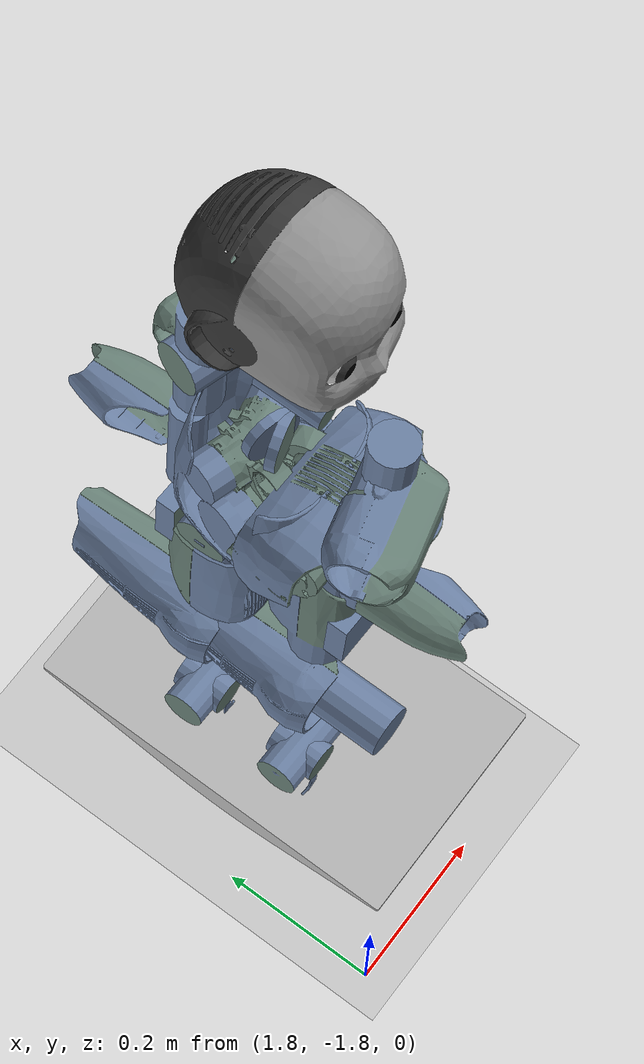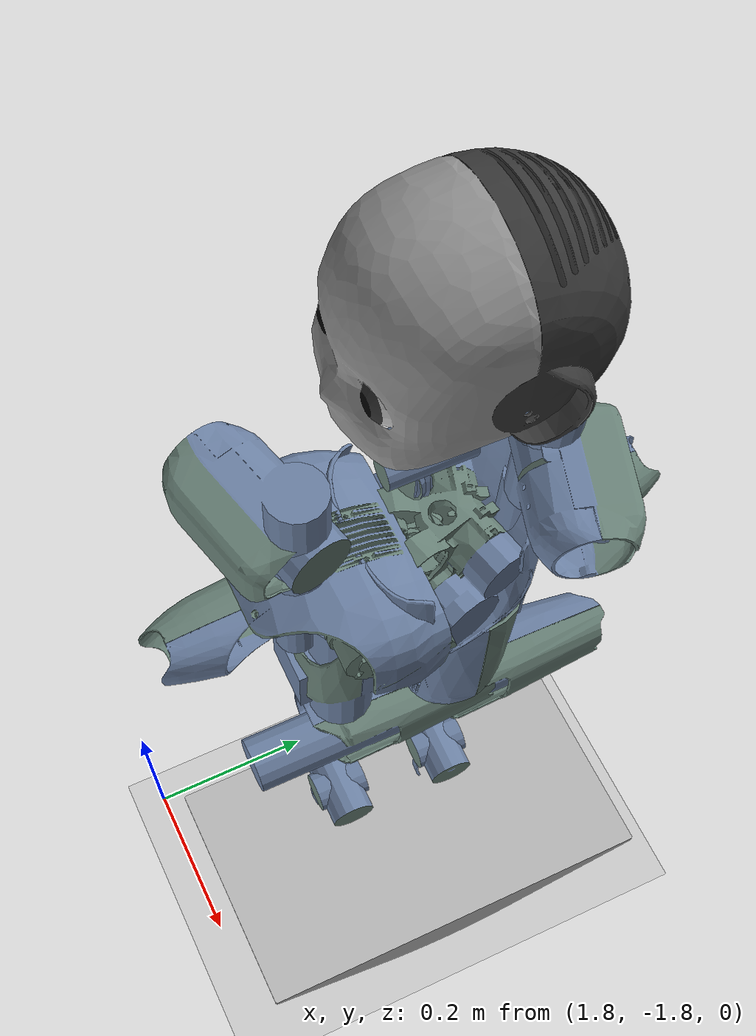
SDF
<sdf version="1.5">
 <world name="default">
  <light name="sun" type="directional">
   <pose>0 0 10 0 -0 0</pose>
   <diffuse>0.8 0.8 0.8 1</diffuse>
   <specular>0.2 0.2 0.2 1</specular>
   <attenuation>
    <range>1000</range>
    <constant>0.9</constant>
    <linear>0.01</linear>
    <quadratic>0.001</quadratic>
   </attenuation>
   <direction>-0.5 0.1 -0.9</direction>
  </light>
  <model name="ground_plane">
   <static>1</static>
   <link name="link">
    <collision name="collision">
     <geometry><plane><normal>0 0 1</normal><size>100 100</size></plane></geometry>
     <surface><friction><ode><mu>100</mu><mu2>50</mu2></ode></friction></surface>
    </collision>
    <visual name="visual">
     <cast_shadows>0</cast_shadows>
     <geometry><plane><normal>0 0 1</normal><size>100 100</size></plane></geometry>
     <material>
      <script><uri>file://media/materials/scripts/gazebo.material</uri><name>Gazebo/Grey</name></script>
     </material>
    </visual>
   </link>
  </model>
  <physics type="ode">
   <max_step_size>0.001</max_step_size>
   <real_time_factor>1</real_time_factor>
   <real_time_update_rate>1000</real_time_update_rate>
   <gravity>0 0 -9.8</gravity>
   <magnetic_field>5.5645e-06 2.28758e-05 -4.23884e-05</magnetic_field>
  </physics>
  <scene><ambient>0.4 0.4 0.4 1</ambient><background>0.7 0.7 0.7 1</background><shadows>1</shadows></scene>
  <spherical_coordinates>
   <surface_model>EARTH_WGS84</surface_model>
   <latitude_deg>0</latitude_deg>
   <longitude_deg>0</longitude_deg>
   <elevation>0</elevation>
   <heading_deg>0</heading_deg>
  </spherical_coordinates>
  <model name="iCub">
   <pose>1.99269 -1.5278 0.711724 -1.3e-05 -0.094267 3.13998</pose>
   <link name="root_link">
    <inertial>
     <mass>4.72</mass>
     <inertia><ixx>0.01</ixx><ixy>0</ixy><ixz>0</ixz><iyy>0.01</iyy><iyz>0</iyz><izz>0.01</izz></inertia>
    </inertial>
    <collision name="root_link_collision">
     <geometry>
      <mesh><scale>1 1 1</scale><uri>model://icub/meshes/collision/icub_simple_collision_root_link.dae</uri></mesh>
     </geometry>
    </collision>
    <visual name="root_link_visual">
     <geometry><mesh><scale>1 1 1</scale><uri>model://icub/meshes/visual/icub_root_link.dae</uri></mesh></geometry>
    </visual>
   </link>
   <link name="l_hip_1">
    <pose>0 -0.0681 -0.1199 2.65359e-06 1.57079 3.14159</pose>
    <inertial>
     <pose>0 -0.0782 0 0 -0 0</pose>
     <mass>0.754</mass>
     <inertia>
      <ixx>0.01</ixx>
      <ixy>2.059e-06</ixy>
      <ixz>1.451e-06</ixz>
      <iyy>0.01</iyy>
      <iyz>1.545e-06</iyz>
      <izz>0.01</izz>
     </inertia>
    </inertial>
    <collision name="l_hip_1_collision">
     <pose>0 0 0 -0.785403 1.57079 -2.35619</pose>
     <geometry>
      <mesh><scale>1 1 1</scale><uri>model://icub/meshes/collision/icub_simple_collision_l_hip_1.dae</uri></mesh>
     </geometry>
    </collision>
    <visual name="l_hip_1_visual">
     <pose>0 0 0 -0.785403 1.57079 -2.35619</pose>
     <geometry><mesh><scale>1 1 1</scale><uri>model://icub/meshes/visual/icub_l_hip_1.dae</uri></mesh></geometry>
    </visual>
   </link>
   <joint name="l_hip_pitch" type="revolute">
    <child>l_hip_1</child>
    <parent>root_link</parent>
    <axis>
     <xyz>3e-06 1 -0</xyz>
     <limit><lower>-0.767945</lower><upper>2.30383</upper><effort>84</effort><velocity>100</velocity></limit>
     <dynamics>
      <damping>1</damping>
      <friction>0</friction>
      <spring_reference>0</spring_reference>
      <spring_stiffness>0</spring_stiffness>
     </dynamics>
     <use_parent_model_frame>1</use_parent_model_frame>
    </axis>
   </joint>
   <link name="l_hip_2">
    <pose>0 -0.0681 -0.1199 3.14159 -7.34641e-06 3.14159</pose>
    <inertial>
     <pose>0 0 0.03045 0 -0 0</pose>
     <mass>0.526</mass>
     <inertia>
      <ixx>0.01</ixx>
      <ixy>-7.4e-08</ixy>
      <ixz>1.0835e-05</ixz>
      <iyy>0.01</iyy>
      <iyz>-6.2e-08</iyz>
      <izz>0.01</izz>
     </inertia>
    </inertial>
    <collision name="l_hip_2_collision">
     <pose>0 0 0 0.785363 -1.57079 2.35623</pose>
     <geometry>
      <mesh><scale>1 1 1</scale><uri>model://icub/meshes/collision/icub_simple_collision_l_hip_2.dae</uri></mesh>
     </geometry>
    </collision>
    <visual name="l_hip_2_visual">
     <pose>0 0 0 0.785363 -1.57079 2.35623</pose>
     <geometry><mesh><scale>1 1 1</scale><uri>model://icub/meshes/visual/icub_l_hip_2.dae</uri></mesh></geometry>
    </visual>
   </link>
   <joint name="l_hip_roll" type="revolute">
    <child>l_hip_2</child>
    <parent>l_hip_1</parent>
    <axis>
     <xyz>-1 3e-06 7e-06</xyz>
     <limit><lower>-2.07694</lower><upper>0.296706</upper><effort>84</effort><velocity>100</velocity></limit>
     <dynamics>
      <damping>1</damping>
      <friction>0</friction>
      <spring_reference>0</spring_reference>
      <spring_stiffness>0</spring_stiffness>
     </dynamics>
     <use_parent_model_frame>1</use_parent_model_frame>
    </axis>
   </joint>
   <link name="l_hip_3">
    <pose>-4.88536e-07 -0.0680998 -0.1864 3.14159 -7.34641e-06 3.14159</pose>
    <inertial>
     <mass>0.1</mass>
     <inertia><ixx>0.01</ixx><ixy>0</ixy><ixz>0</ixz><iyy>0.01</iyy><iyz>0</iyz><izz>0.01</izz></inertia>
    </inertial>
   </link>
   <joint name="l_leg_ft_sensor" type="revolute">
    <child>l_hip_3</child>
    <parent>l_hip_2</parent>
    <axis>
     <xyz>0 0 0</xyz>
     <limit><lower>0</lower><upper>0</upper><effort>0</effort><velocity>0</velocity></limit>
     <dynamics><spring_reference>0</spring_reference><spring_stiffness>0</spring_stiffness></dynamics>
     <use_parent_model_frame>1</use_parent_model_frame>
    </axis>
    <sensor name="left_leg_ft" type="force_torque">
     <always_on>1</always_on>
     <update_rate>100</update_rate>
     <plugin name="left_leg_ft_plugin" filename="libgazebo_yarp_forcetorque.so">
      <yarpConfigurationFile>model://icub/conf/FT/gazebo_icub_left_leg_ft.ini</yarpConfigurationFile>
     </plugin>
    </sensor>
   </joint>
   <link name="l_upper_leg">
    <pose>0 -0.0681 -0.1199 1.57079 -7.34641e-06 3.14159</pose>
    <inertial>
     <pose>0.00144 -0.15943 -0.00039 0 -0 0</pose>
     <mass>2.175</mass>
     <inertia>
      <ixx>0.01</ixx>
      <ixy>-6.726e-05</ixy>
      <ixz>2.267e-06</ixz>
      <iyy>0.01</iyy>
      <iyz>3.63726e-05</iyz>
      <izz>0.01</izz>
     </inertia>
    </inertial>
    <collision name="l_upper_leg_collision">
     <pose>0 0 0 -2.67797 1.57079 -1.10716</pose>
     <geometry>
      <mesh><scale>1 1 1</scale><uri>model://icub/meshes/collision/icub_simple_collision_l_thigh.dae</uri></mesh>
     </geometry>
    </collision>
    <visual name="l_upper_leg_visual">
     <pose>0 0 0 -2.67797 1.57079 -1.10716</pose>
     <geometry><mesh><scale>1 1 1</scale><uri>model://icub/meshes/visual/icub_l_thigh.dae</uri></mesh></geometry>
    </visual>
   </link>
   <joint name="l_hip_yaw" type="revolute">
    <child>l_upper_leg</child>
    <parent>l_hip_3</parent>
    <axis>
     <xyz>7e-06 -6e-06 1</xyz>
     <limit><lower>-1.37881</lower><upper>1.37881</upper><effort>40</effort><velocity>100</velocity></limit>
     <dynamics>
      <damping>1</damping>
      <friction>0</friction>
      <spring_reference>0</spring_reference>
      <spring_stiffness>0</spring_stiffness>
     </dynamics>
     <use_parent_model_frame>1</use_parent_model_frame>
    </axis>
   </joint>
   <link name="l_lower_leg">
    <pose>-1.64265e-06 -0.0680986 -0.3435 2.09198 -1.57078 -0.521189</pose>
    <inertial>
     <pose>-0.1071 0.00182 0.00211 0 -0 0</pose>
     <mass>1.264</mass>
     <inertia>
      <ixx>0.01</ixx>
      <ixy>-0.000185699</ixy>
      <ixz>-6.3147e-05</ixz>
      <iyy>0.01</iyy>
      <iyz>7.86e-07</iyz>
      <izz>0.01</izz>
     </inertia>
    </inertial>
    <collision name="l_lower_leg_collision">
     <pose>5.55112e-17 2.28232e-12 2.2823e-12 -3.14159 -2.33487e-16 1.5708</pose>
     <geometry>
      <mesh><scale>1 1 1</scale><uri>model://icub/meshes/collision/icub_simple_collision_l_shank.dae</uri></mesh>
     </geometry>
    </collision>
    <visual name="l_lower_leg_visual">
     <pose>5.55112e-17 2.28232e-12 2.2823e-12 -3.14159 -2.33487e-16 1.5708</pose>
     <geometry><mesh><scale>1 1 1</scale><uri>model://icub/meshes/visual/icub_l_shank.dae</uri></mesh></geometry>
    </visual>
   </link>
   <joint name="l_knee" type="revolute">
    <child>l_lower_leg</child>
    <parent>l_upper_leg</parent>
    <axis>
     <xyz>5e-06 1 6e-06</xyz>
     <limit><lower>-2.18166</lower><upper>0.401426</upper><effort>30</effort><velocity>100</velocity></limit>
     <dynamics>
      <damping>1</damping>
      <friction>0</friction>
      <spring_reference>0</spring_reference>
      <spring_stiffness>0</spring_stiffness>
     </dynamics>
     <use_parent_model_frame>1</use_parent_model_frame>
    </axis>
   </joint>
   <link name="l_ankle_1">
    <pose>-3.98983e-06 -0.0680972 -0.5565 0.52118 -1.57078 -0.521189</pose>
    <inertial>
     <pose>-0.0054 0.00163 0.0172 0 -0 0</pose>
     <mass>0.746</mass>
     <inertia>
      <ixx>0.01</ixx>
      <ixy>-7.081e-06</ixy>
      <ixz>4.1421e-05</ixz>
      <iyy>0.01</iyy>
      <iyz>2.0817e-05</iyz>
      <izz>0.01</izz>
     </inertia>
    </inertial>
    <collision name="l_ankle_1_collision">
     <pose>1.11022e-16 -5.54343e-12 4.45647e-12 1.5708 1.53106e-11 1.53105e-11</pose>
     <geometry>
      <mesh><scale>1 1 1</scale><uri>model://icub/meshes/collision/icub_simple_collision_l_ankle_1.dae</uri></mesh>
     </geometry>
    </collision>
    <visual name="l_ankle_1_visual">
     <pose>1.11022e-16 -5.54343e-12 4.45647e-12 1.5708 1.53106e-11 1.53105e-11</pose>
     <geometry><mesh><scale>1 1 1</scale><uri>model://icub/meshes/visual/icub_l_ankle_1.dae</uri></mesh></geometry>
    </visual>
   </link>
   <joint name="l_ankle_pitch" type="revolute">
    <child>l_ankle_1</child>
    <parent>l_lower_leg</parent>
    <axis>
     <xyz>-9e-06 -1 -6e-06</xyz>
     <limit><lower>-0.733038</lower><upper>0.366519</upper><effort>24</effort><velocity>100</velocity></limit>
     <dynamics>
      <damping>1</damping>
      <friction>0</friction>
      <spring_reference>0</spring_reference>
      <spring_stiffness>0</spring_stiffness>
     </dynamics>
     <use_parent_model_frame>1</use_parent_model_frame>
    </axis>
   </joint>
   <link name="l_ankle_2">
    <pose>-3.98983e-06 -0.0680972 -0.5565 3.14159 -7.34645e-06 3.14158</pose>
    <inertial>
     <pose>0 0 0.037 0 -0 0</pose>
     <mass>0.2675</mass>
     <inertia><ixx>0.01</ixx><ixy>0</ixy><ixz>0</ixz><iyy>0.01</iyy><iyz>0</iyz><izz>0.01</izz></inertia>
    </inertial>
   </link>
   <joint name="l_ankle_roll" type="revolute">
    <child>l_ankle_2</child>
    <parent>l_ankle_1</parent>
    <axis>
     <xyz>-1 9e-06 7e-06</xyz>
     <limit><lower>-0.418879</lower><upper>0.418879</upper><effort>11</effort><velocity>100</velocity></limit>
     <dynamics>
      <damping>1</damping>
      <friction>0</friction>
      <spring_reference>0</spring_reference>
      <spring_stiffness>0</spring_stiffness>
     </dynamics>
     <use_parent_model_frame>1</use_parent_model_frame>
    </axis>
   </joint>
   <link name="l_foot">
    <pose>-4.26164e-06 -0.068097 -0.5935 3.14159 -7.34645e-06 3.14158</pose>
    <inertial>
     <pose>0.024069 -0.000613931 -0.0284154 0 -0 0</pose>
     <mass>0.5935</mass>
     <inertia>
      <ixx>0.01</ixx>
      <ixy>-4.51893e-06</ixy>
      <ixz>0.000567785</ixz>
      <iyy>0.01</iyy>
      <iyz>-6.62361e-07</iyz>
      <izz>0.01</izz>
     </inertia>
    </inertial>
    <collision name="l_foot_collision">
     <pose>0.03 0 -0.01 0 -0 0</pose>
     <geometry><box><size>0.15 0.07 0.03</size></box></geometry>
     <max_contacts>4</max_contacts>
     <surface>
      <contact>
       <ode>
        <soft_erp>0.2</soft_erp>
        <soft_cfm>0</soft_cfm>
        <kp>1.8e+07</kp>
        <kd>100</kd>
        <max_vel>100</max_vel>
        <min_depth>0.0001</min_depth>
       </ode>
      </contact>
      <friction><ode><mu>1</mu><mu2>1</mu2><fdir1>0 0 0</fdir1><slip1>0</slip1><slip2>0</slip2></ode></friction>
      <bounce><restitution_coefficient>0</restitution_coefficient><threshold>100000</threshold></bounce>
     </surface>
    </collision>
    <visual name="l_foot_visual">
     <pose>4.45647e-12 -5.54343e-12 -0.037 -0.785403 1.57079 -0.785403</pose>
     <geometry><mesh><scale>1 1 1</scale><uri>model://icub/meshes/visual/icub_l_foot.dae</uri></mesh></geometry>
    </visual>
   </link>
   <joint name="l_foot_ft_sensor" type="revolute">
    <child>l_foot</child>
    <parent>l_ankle_2</parent>
    <axis>
     <xyz>0 0 0</xyz>
     <limit><lower>0</lower><upper>0</upper><effort>0</effort><velocity>0</velocity></limit>
     <dynamics><spring_reference>0</spring_reference><spring_stiffness>0</spring_stiffness></dynamics>
     <use_parent_model_frame>1</use_parent_model_frame>
    </axis>
    <sensor name="left_foot_ft" type="force_torque">
     <always_on>1</always_on>
     <update_rate>100</update_rate>
     <plugin name="left_foot_ft_plugin" filename="libgazebo_yarp_forcetorque.so">
      <yarpConfigurationFile>model://icub/conf/FT/gazebo_icub_left_foot_ft.ini</yarpConfigurationFile>
     </plugin>
    </sensor>
   </joint>
   <link name="r_hip_1">
    <pose>0 0.0681 -0.1199 3.14159 1.57079 -3.14159</pose>
    <inertial>
     <pose>0 -0.0782 0 0 -0 0</pose>
     <mass>0.754</mass>
     <inertia><ixx>0.01</ixx><ixy>0</ixy><ixz>0</ixz><iyy>0.01</iyy><iyz>0</iyz><izz>0.01</izz></inertia>
    </inertial>
    <collision name="r_hip_1_collision">
     <pose>0 0 0 1.76819 -1.57079 2.76109</pose>
     <geometry>
      <mesh><scale>1 1 1</scale><uri>model://icub/meshes/collision/icub_simple_collision_r_hip_1.dae</uri></mesh>
     </geometry>
    </collision>
    <visual name="r_hip_1_visual">
     <pose>0 0 0 1.76819 -1.57079 2.76109</pose>
     <geometry><mesh><scale>1 1 1</scale><uri>model://icub/meshes/visual/icub_r_hip_1.dae</uri></mesh></geometry>
    </visual>
   </link>
   <joint name="r_hip_pitch" type="revolute">
    <child>r_hip_1</child>
    <parent>root_link</parent>
    <axis>
     <xyz>0 1 -0</xyz>
     <limit><lower>-0.767945</lower><upper>2.30383</upper><effort>84</effort><velocity>100</velocity></limit>
     <dynamics>
      <damping>1</damping>
      <friction>0</friction>
      <spring_reference>0</spring_reference>
      <spring_stiffness>0</spring_stiffness>
     </dynamics>
     <use_parent_model_frame>1</use_parent_model_frame>
    </axis>
   </joint>
   <link name="r_hip_2">
    <pose>0 0.0681 -0.1199 -3.14159 -7.34641e-06 -3.14159</pose>
    <inertial>
     <pose>0 0 0.03045 0 -0 0</pose>
     <mass>0.526</mass>
     <inertia><ixx>0.01</ixx><ixy>0</ixy><ixz>0</ixz><iyy>0.01</iyy><iyz>0</iyz><izz>0.01</izz></inertia>
    </inertial>
    <collision name="r_hip_2_collision">
     <pose>0 0 0 -2.35627 -1.57079 2.35627</pose>
     <geometry>
      <mesh><scale>1 1 1</scale><uri>model://icub/meshes/collision/icub_simple_collision_r_hip_2.dae</uri></mesh>
     </geometry>
    </collision>
    <visual name="r_hip_2_visual">
     <pose>0 0 0 -2.35627 -1.57079 2.35627</pose>
     <geometry><mesh><scale>1 1 1</scale><uri>model://icub/meshes/visual/icub_r_hip_2.dae</uri></mesh></geometry>
    </visual>
   </link>
   <joint name="r_hip_roll" type="revolute">
    <child>r_hip_2</child>
    <parent>r_hip_1</parent>
    <axis>
     <xyz>1 0 -7e-06</xyz>
     <limit><lower>-2.07694</lower><upper>0.296706</upper><effort>84</effort><velocity>100</velocity></limit>
     <dynamics>
      <damping>1</damping>
      <friction>0</friction>
      <spring_reference>0</spring_reference>
      <spring_stiffness>0</spring_stiffness>
     </dynamics>
     <use_parent_model_frame>1</use_parent_model_frame>
    </axis>
   </joint>
   <link name="r_hip_3">
    <pose>-4.88536e-07 0.0681 -0.1864 -3.14159 -7.34641e-06 -3.14159</pose>
    <inertial>
     <mass>0.1</mass>
     <inertia><ixx>0.01</ixx><ixy>0</ixy><ixz>0</ixz><iyy>0.01</iyy><iyz>0</iyz><izz>0.01</izz></inertia>
    </inertial>
   </link>
   <joint name="r_leg_ft_sensor" type="revolute">
    <child>r_hip_3</child>
    <parent>r_hip_2</parent>
    <axis>
     <xyz>0 0 0</xyz>
     <limit><lower>0</lower><upper>0</upper><effort>0</effort><velocity>0</velocity></limit>
     <dynamics><spring_reference>0</spring_reference><spring_stiffness>0</spring_stiffness></dynamics>
     <use_parent_model_frame>1</use_parent_model_frame>
    </axis>
    <sensor name="right_leg_ft" type="force_torque">
     <always_on>1</always_on>
     <update_rate>100</update_rate>
     <plugin name="right_leg_ft_plugin" filename="libgazebo_yarp_forcetorque.so">
      <yarpConfigurationFile>model://icub/conf/FT/gazebo_icub_right_leg_ft.ini</yarpConfigurationFile>
     </plugin>
    </sensor>
   </joint>
   <link name="r_upper_leg">
    <pose>0 0.0681 -0.1199 1.57079 -7.34641e-06 3.14159</pose>
    <inertial>
     <pose>0.00144 -0.15943 0.00039 0 -0 0</pose>
     <mass>2.175</mass>
     <inertia>
      <ixx>0.01</ixx>
      <ixy>0</ixy>
      <ixz>0</ixz>
      <iyy>0.01</iyy>
      <iyz>-2.71051e-20</iyz>
      <izz>0.01</izz>
     </inertia>
    </inertial>
    <collision name="r_upper_leg_collision">
     <pose>0 0 0 1.57087 -1.57079 -7.26536e-05</pose>
     <geometry>
      <mesh><scale>1 1 1</scale><uri>model://icub/meshes/collision/icub_simple_collision_r_thigh.dae</uri></mesh>
     </geometry>
    </collision>
    <visual name="r_upper_leg_visual">
     <pose>0 0 0 1.57087 -1.57079 -7.26536e-05</pose>
     <geometry><mesh><scale>1 1 1</scale><uri>model://icub/meshes/visual/icub_r_thigh.dae</uri></mesh></geometry>
    </visual>
   </link>
   <joint name="r_hip_yaw" type="revolute">
    <child>r_upper_leg</child>
    <parent>r_hip_3</parent>
    <axis>
     <xyz>-7e-06 4e-06 -1</xyz>
     <limit><lower>-1.37881</lower><upper>1.37881</upper><effort>40</effort><velocity>100</velocity></limit>
     <dynamics>
      <damping>1</damping>
      <friction>0</friction>
      <spring_reference>0</spring_reference>
      <spring_stiffness>0</spring_stiffness>
     </dynamics>
     <use_parent_model_frame>1</use_parent_model_frame>
    </axis>
   </joint>
   <link name="r_lower_leg">
    <pose>-1.64266e-06 0.0681008 -0.3435 1.89254 -1.57078 -0.321751</pose>
    <inertial>
     <pose>-0.1071 0.00182 -0.00211 0 -0 0</pose>
     <mass>1.264</mass>
     <inertia>
      <ixx>0.01</ixx>
      <ixy>5.42101e-20</ixy>
      <ixz>-5.42101e-20</ixz>
      <iyy>0.01</iyy>
      <iyz>8.47033e-22</iyz>
      <izz>0.01</izz>
     </inertia>
    </inertial>
    <collision name="r_lower_leg_collision">
     <pose>5.55112e-17 2.28232e-12 -8.32667e-17 3.14159 -1.14426e-17 1.5708</pose>
     <geometry>
      <mesh><scale>1 1 1</scale><uri>model://icub/meshes/collision/icub_simple_collision_r_shank.dae</uri></mesh>
     </geometry>
    </collision>
    <visual name="r_lower_leg_visual">
     <pose>5.55112e-17 2.28232e-12 -8.32667e-17 3.14159 -1.14426e-17 1.5708</pose>
     <geometry><mesh><scale>1 1 1</scale><uri>model://icub/meshes/visual/icub_r_shank.dae</uri></mesh></geometry>
    </visual>
   </link>
   <joint name="r_knee" type="revolute">
    <child>r_lower_leg</child>
    <parent>r_upper_leg</parent>
    <axis>
     <xyz>3e-06 1 4e-06</xyz>
     <limit><lower>-2.18166</lower><upper>0.401426</upper><effort>30</effort><velocity>100</velocity></limit>
     <dynamics>
      <damping>1</damping>
      <friction>0</friction>
      <spring_reference>0</spring_reference>
      <spring_stiffness>0</spring_stiffness>
     </dynamics>
     <use_parent_model_frame>1</use_parent_model_frame>
    </axis>
   </joint>
   <link name="r_ankle_1">
    <pose>-3.98984e-06 0.0681016 -0.5565 -2.81984 -1.57078 -0.321751</pose>
    <inertial>
     <pose>-0.0054 0.00163 -0.0172 0 -0 0</pose>
     <mass>0.746</mass>
     <inertia>
      <ixx>0.01</ixx>
      <ixy>-1.69407e-21</ixy>
      <ixz>1.35525e-20</ixz>
      <iyy>0.01</iyy>
      <iyz>3.38813e-21</iyz>
      <izz>0.01</izz>
     </inertia>
    </inertial>
    <collision name="r_ankle_1_collision">
     <pose>1.11022e-16 -1.08717e-12 -4.45647e-12 -1.5708 -1.53106e-11 5.10376e-12</pose>
     <geometry>
      <mesh><scale>1 1 1</scale><uri>model://icub/meshes/collision/icub_simple_collision_r_ankle_1.dae</uri></mesh>
     </geometry>
    </collision>
    <visual name="r_ankle_1_visual">
     <pose>1.11022e-16 -1.08717e-12 -4.45647e-12 -1.5708 -1.53106e-11 5.10376e-12</pose>
     <geometry><mesh><scale>1 1 1</scale><uri>model://icub/meshes/visual/icub_r_ankle_1.dae</uri></mesh></geometry>
    </visual>
   </link>
   <joint name="r_ankle_pitch" type="revolute">
    <child>r_ankle_1</child>
    <parent>r_lower_leg</parent>
    <axis>
     <xyz>1e-06 -1 -4e-06</xyz>
     <limit><lower>-0.733038</lower><upper>0.366519</upper><effort>24</effort><velocity>100</velocity></limit>
     <dynamics>
      <damping>1</damping>
      <friction>0</friction>
      <spring_reference>0</spring_reference>
      <spring_stiffness>0</spring_stiffness>
     </dynamics>
     <use_parent_model_frame>1</use_parent_model_frame>
    </axis>
   </joint>
   <link name="r_ankle_2">
    <pose>-3.98984e-06 0.0681016 -0.5565 3.14159 -1.4236e-05 -3.14159</pose>
    <inertial>
     <pose>0 0 0.037 0 -0 0</pose>
     <mass>0.2675</mass>
     <inertia><ixx>0.01</ixx><ixy>0</ixy><ixz>0</ixz><iyy>0.01</iyy><iyz>0</iyz><izz>0.01</izz></inertia>
    </inertial>
   </link>
   <joint name="r_ankle_roll" type="revolute">
    <child>r_ankle_2</child>
    <parent>r_ankle_1</parent>
    <axis>
     <xyz>1 3e-06 -1.4e-05</xyz>
     <limit><lower>-0.418879</lower><upper>0.418879</upper><effort>11</effort><velocity>100</velocity></limit>
     <dynamics>
      <damping>1</damping>
      <friction>0</friction>
      <spring_reference>0</spring_reference>
      <spring_stiffness>0</spring_stiffness>
     </dynamics>
     <use_parent_model_frame>1</use_parent_model_frame>
    </axis>
   </joint>
   <link name="r_foot">
    <pose>-4.51657e-06 0.0681019 -0.5935 3.14159 -1.4236e-05 -3.14159</pose>
    <inertial>
     <pose>0.024069 0.000613931 -0.0284154 0 -0 0</pose>
     <mass>0.5935</mass>
     <inertia>
      <ixx>0.01</ixx>
      <ixy>4.51893e-06</ixy>
      <ixz>0.000567784</ixz>
      <iyy>0.01</iyy>
      <iyz>6.62535e-07</iyz>
      <izz>0.01</izz>
     </inertia>
    </inertial>
    <collision name="r_foot_collision">
     <pose>0.03 0 -0.01 0 -0 0</pose>
     <geometry><box><size>0.15 0.07 0.03</size></box></geometry>
     <max_contacts>4</max_contacts>
     <surface>
      <contact>
       <ode>
        <soft_erp>0.2</soft_erp>
        <soft_cfm>0</soft_cfm>
        <kp>1.8e+07</kp>
        <kd>100</kd>
        <max_vel>100</max_vel>
        <min_depth>0.0001</min_depth>
       </ode>
      </contact>
      <friction><ode><mu>1</mu><mu2>1</mu2><fdir1>0 0 0</fdir1><slip1>0</slip1><slip2>0</slip2></ode></friction>
      <bounce><restitution_coefficient>0</restitution_coefficient><threshold>100000</threshold></bounce>
     </surface>
    </collision>
    <visual name="r_foot_visual">
     <pose>4.45647e-12 1.08717e-12 -0.037 -2.81983 1.57079 0.321763</pose>
     <geometry><mesh><scale>1 1 1</scale><uri>model://icub/meshes/visual/icub_r_foot.dae</uri></mesh></geometry>
    </visual>
   </link>
   <joint name="r_foot_ft_sensor" type="revolute">
    <child>r_foot</child>
    <parent>r_ankle_2</parent>
    <axis>
     <xyz>0 0 0</xyz>
     <limit><lower>0</lower><upper>0</upper><effort>0</effort><velocity>0</velocity></limit>
     <dynamics><spring_reference>0</spring_reference><spring_stiffness>0</spring_stiffness></dynamics>
     <use_parent_model_frame>1</use_parent_model_frame>
    </axis>
    <sensor name="right_foot_ft" type="force_torque">
     <always_on>1</always_on>
     <update_rate>100</update_rate>
     <plugin name="right_foot_ft_plugin" filename="libgazebo_yarp_forcetorque.so">
      <yarpConfigurationFile>model://icub/conf/FT/gazebo_icub_right_foot_ft.ini</yarpConfigurationFile>
     </plugin>
    </sensor>
   </joint>
   <link name="torso_1">
    <pose>0 0 0 3.14159 -1.57079 -2.65359e-06</pose>
    <inertial>
     <mass>0.1</mass>
     <inertia>
      <ixx>0.01</ixx>
      <ixy>-4.263e-05</ixy>
      <ixz>-3.889e-08</ixz>
      <iyy>0.01</iyy>
      <iyz>0</iyz>
      <izz>0.01</izz>
     </inertia>
    </inertial>
    <collision name="torso_1_collision">
     <pose>0 0 0 -1.5708 5.10314e-12 1.11022e-16</pose>
     <geometry>
      <mesh><scale>1 1 1</scale><uri>model://icub/meshes/collision/icub_simple_collision_lap_belt_1.dae</uri></mesh>
     </geometry>
    </collision>
    <visual name="torso_1_visual">
     <pose>0 0 0 -1.5708 5.10314e-12 1.11022e-16</pose>
     <geometry>
      <mesh><scale>1 1 1</scale><uri>model://icub/meshes/visual/icub_lap_belt_1.dae</uri></mesh>
     </geometry>
    </visual>
   </link>
   <joint name="torso_pitch" type="revolute">
    <child>torso_1</child>
    <parent>root_link</parent>
    <axis>
     <xyz>-3e-06 -1 -0</xyz>
     <limit><lower>-0.383972</lower><upper>1.46608</upper><effort>36</effort><velocity>100</velocity></limit>
     <dynamics>
      <damping>1</damping>
      <friction>0</friction>
      <spring_reference>0</spring_reference>
      <spring_stiffness>0</spring_stiffness>
     </dynamics>
     <use_parent_model_frame>1</use_parent_model_frame>
    </axis>
   </joint>
   <link name="torso_2">
    <pose>1.17543e-07 -3.1191e-13 0.032 -3.14159 3.67321e-06 1.57079</pose>
    <inertial>
     <mass>0.1</mass>
     <inertia>
      <ixx>0.01</ixx>
      <ixy>-1.923e-06</ixy>
      <ixz>5.095e-05</ixz>
      <iyy>0.01</iyy>
      <iyz>-3.849e-07</iyz>
      <izz>0.01</izz>
     </inertia>
    </inertial>
   </link>
   <joint name="torso_roll" type="revolute">
    <child>torso_2</child>
    <parent>torso_1</parent>
    <axis>
     <xyz>1 -3e-06 -7e-06</xyz>
     <limit><lower>-0.680678</lower><upper>0.680678</upper><effort>80</effort><velocity>100</velocity></limit>
     <dynamics>
      <damping>1</damping>
      <friction>0</friction>
      <spring_reference>0</spring_reference>
      <spring_stiffness>0</spring_stiffness>
     </dynamics>
     <use_parent_model_frame>1</use_parent_model_frame>
    </axis>
   </joint>
   <link name="chest">
    <pose>-0.00549988 1.45945e-08 0.032 1.5708 -7.34642e-06 -3.14159</pose>
    <inertial>
     <pose>0.00222898 0.075 -1.18362e-17 0 -0 0</pose>
     <mass>4.81</mass>
     <inertia>
      <ixx>0.07472</ixx>
      <ixy>-3.6e-06</ixy>
      <ixz>-4.705e-05</ixz>
      <iyy>0.08145</iyy>
      <iyz>0.004567</iyz>
      <izz>0.01306</izz>
     </inertia>
    </inertial>
    <collision name="chest_collision">
     <pose>-0.0055 -6.93889e-18 -3.55271e-18 -1.10717 -1.57079 2.67798</pose>
     <geometry>
      <mesh><scale>1 1 1</scale><uri>model://icub/meshes/collision/icub_simple_collision_chest.dae</uri></mesh>
     </geometry>
    </collision>
    <visual name="chest_visual">
     <pose>-0.0055 -6.93889e-18 -3.55271e-18 -1.10717 -1.57079 2.67798</pose>
     <geometry><mesh><scale>1 1 1</scale><uri>model://icub/meshes/visual/icub_chest.dae</uri></mesh></geometry>
    </visual>
   </link>
   <joint name="torso_yaw" type="revolute">
    <child>chest</child>
    <parent>torso_2</parent>
    <axis>
     <xyz>-7e-06 0 -1</xyz>
     <limit><lower>-1.02974</lower><upper>1.02974</upper><effort>80</effort><velocity>100</velocity></limit>
     <dynamics>
      <damping>1</damping>
      <friction>0</friction>
      <spring_reference>0</spring_reference>
      <spring_stiffness>0</spring_stiffness>
     </dynamics>
     <use_parent_model_frame>1</use_parent_model_frame>
    </axis>
   </joint>
   <link name="l_shoulder_1">
    <pose>-0.0107487 -0.11026 0.1753 -0.261794 -1.57079 -1.42918e-06</pose>
    <inertial>
     <pose>-5e-06 0.0187 -0.00119 0 -0 0</pose>
     <mass>0.189</mass>
     <inertia>
      <ixx>0.01</ixx>
      <ixy>9e-09</ixy>
      <ixz>0</ixz>
      <iyy>0.01</iyy>
      <iyz>-1.7e-08</iyz>
      <izz>0.01</izz>
     </inertia>
    </inertial>
    <collision name="l_shoulder_1_collision">
     <pose>3.08642e-14 0.109285 -0.00521101 -0.301063 1.57079 -1.87186</pose>
     <geometry>
      <mesh>
       <scale>1 1 1</scale>
       <uri>model://icub/meshes/collision/icub_simple_collision_l_shoulder_1.dae</uri>
      </mesh>
     </geometry>
    </collision>
    <visual name="l_shoulder_1_visual">
     <pose>3.08642e-14 0.109285 -0.00521101 -0.301063 1.57079 -1.87186</pose>
     <geometry>
      <mesh><scale>1 1 1</scale><uri>model://icub/meshes/visual/icub_l_shoulder_1.dae</uri></mesh>
     </geometry>
    </visual>
   </link>
   <joint name="l_shoulder_pitch" type="revolute">
    <child>l_shoulder_1</child>
    <parent>chest</parent>
    <axis>
     <xyz>-0.258815 -0.965927 3e-06</xyz>
     <limit><lower>-1.65806</lower><upper>0.0872665</upper><effort>84</effort><velocity>100</velocity></limit>
     <dynamics>
      <damping>1</damping>
      <friction>0</friction>
      <spring_reference>0</spring_reference>
      <spring_stiffness>0</spring_stiffness>
     </dynamics>
     <use_parent_model_frame>1</use_parent_model_frame>
    </axis>
   </joint>
   <link name="l_shoulder_2">
    <pose>-0.0107487 -0.11026 0.1753 3.14159 8.21174e-07 -1.83259</pose>
    <inertial>
     <pose>9.4e-05 -0.00627 0.0166 0 -0 0</pose>
     <mass>0.179</mass>
     <inertia>
      <ixx>0.01</ixx>
      <ixy>4.66e-07</ixy>
      <ixz>3.65e-07</ixz>
      <iyy>0.01</iyy>
      <iyz>-2.0524e-05</iyz>
      <izz>0.01</izz>
     </inertia>
    </inertial>
    <collision name="l_shoulder_2_collision">
     <pose>-0.00154529 -0.00521101 -1.11181e-12 -2.14033 1.57079 -0.569533</pose>
     <geometry>
      <mesh>
       <scale>1 1 1</scale>
       <uri>model://icub/meshes/collision/icub_simple_collision_l_shoulder_2.dae</uri>
      </mesh>
     </geometry>
    </collision>
    <visual name="l_shoulder_2_visual">
     <pose>-0.00154529 -0.00521101 -1.11181e-12 -2.14033 1.57079 -0.569533</pose>
     <geometry>
      <mesh><scale>1 1 1</scale><uri>model://icub/meshes/visual/icub_l_shoulder_2.dae</uri></mesh>
     </geometry>
    </visual>
   </link>
   <joint name="l_shoulder_roll" type="revolute">
    <child>l_shoulder_2</child>
    <parent>l_shoulder_1</parent>
    <axis>
     <xyz>-0.965927 0.258815 7e-06</xyz>
     <limit><lower>0</lower><upper>2.80649</upper><effort>84</effort><velocity>100</velocity></limit>
     <dynamics>
      <damping>1</damping>
      <friction>0</friction>
      <spring_reference>0</spring_reference>
      <spring_stiffness>0</spring_stiffness>
     </dynamics>
     <use_parent_model_frame>1</use_parent_model_frame>
    </axis>
   </joint>
   <link name="l_shoulder_3">
    <pose>-0.0107487 -0.11026 0.1753 3.14159 -6.5209e-06 -3.14159</pose>
    <inertial>
     <pose>0.00559398 9.77357e-05 0.0501346 0 -0 0</pose>
     <mass>0.156157</mass>
     <inertia>
      <ixx>0.01</ixx>
      <ixy>-5.662e-08</ixy>
      <ixz>-4.3618e-06</ixz>
      <iyy>0.01</iyy>
      <iyz>-7.42844e-07</iyz>
      <izz>0.01</izz>
     </inertia>
    </inertial>
   </link>
   <joint name="l_shoulder_yaw" type="revolute">
    <child>l_shoulder_3</child>
    <parent>l_shoulder_2</parent>
    <axis>
     <xyz>-7e-06 3e-06 -1</xyz>
     <limit><lower>-0.645772</lower><upper>1.74533</upper><effort>34</effort><velocity>100</velocity></limit>
     <dynamics>
      <damping>1</damping>
      <friction>0</friction>
      <spring_reference>0</spring_reference>
      <spring_stiffness>0</spring_stiffness>
     </dynamics>
     <use_parent_model_frame>1</use_parent_model_frame>
    </axis>
   </joint>
   <link name="l_upper_arm">
    <pose>-0.0257492 -0.11026 0.1073 3.14159 -6.5209e-06 -3.14159</pose>
    <inertial>
     <pose>-0.000156 -9.87e-05 0.0298 0 -0 0</pose>
     <mass>0.727843</mass>
     <inertia>
      <ixx>0.01</ixx>
      <ixy>-1.08e-06</ixy>
      <ixz>-2.29e-06</ixz>
      <iyy>0.01</iyy>
      <iyz>3.57e-06</iyz>
      <izz>0.01</izz>
     </inertia>
    </inertial>
    <collision name="l_upper_arm_collision">
     <pose>-0.0204334 0.000143922 -0.068 1.15274e-11 4.92958e-12 -1.309</pose>
     <geometry>
      <mesh><scale>1 1 1</scale><uri>model://icub/meshes/collision/icub_simple_collision_l_arm.dae</uri></mesh>
     </geometry>
    </collision>
    <visual name="l_upper_arm_visual">
     <pose>-0.0204334 0.000143922 -0.068 1.15274e-11 4.92958e-12 -1.309</pose>
     <geometry><mesh><scale>1 1 1</scale><uri>model://icub/meshes/visual/icub_l_arm.dae</uri></mesh></geometry>
    </visual>
   </link>
   <joint name="l_arm_ft_sensor" type="revolute">
    <child>l_upper_arm</child>
    <parent>l_shoulder_3</parent>
    <axis>
     <xyz>0 0 0</xyz>
     <limit><lower>0</lower><upper>0</upper><effort>0</effort><velocity>0</velocity></limit>
     <dynamics><spring_reference>0</spring_reference><spring_stiffness>0</spring_stiffness></dynamics>
     <use_parent_model_frame>1</use_parent_model_frame>
    </axis>
    <sensor name="left_arm_ft" type="force_torque">
     <always_on>1</always_on>
     <update_rate>100</update_rate>
     <plugin name="left_arm_ft_plugin" filename="libgazebo_yarp_forcetorque.so">
      <yarpConfigurationFile>model://icub/conf/FT/gazebo_icub_left_arm_ft.ini</yarpConfigurationFile>
     </plugin>
    </sensor>
   </joint>
   <link name="l_elbow_1">
    <pose>-0.0257497 -0.11026 0.0230202 3.14159 -6.5209e-06 -3.14159</pose>
    <inertial>
     <pose>-0.0013 0.00371 -0.00105 0 -0 0</pose>
     <mass>0.1</mass>
     <inertia>
      <ixx>0.01</ixx>
      <ixy>-5.15e-07</ixy>
      <ixz>-4.08e-07</ixz>
      <iyy>0.01</iyy>
      <iyz>-3.71e-07</iyz>
      <izz>0.01</izz>
     </inertia>
    </inertial>
   </link>
   <joint name="l_elbow" type="revolute">
    <child>l_elbow_1</child>
    <parent>l_upper_arm</parent>
    <axis>
     <xyz>-1e-06 1 3e-06</xyz>
     <limit><lower>0.0959931</lower><upper>1.85005</upper><effort>20</effort><velocity>100</velocity></limit>
     <dynamics>
      <damping>1</damping>
      <friction>0</friction>
      <spring_reference>0</spring_reference>
      <spring_stiffness>0</spring_stiffness>
     </dynamics>
     <use_parent_model_frame>1</use_parent_model_frame>
    </axis>
   </joint>
   <link name="l_forearm">
    <pose>-0.0107497 -0.11026 0.0230201 -1.5708 2.59741e-06 -1.57079</pose>
    <inertial>
     <pose>0.000347 0.066 0.00476 0 -0 0</pose>
     <mass>0.525</mass>
     <inertia>
      <ixx>0.01</ixx>
      <ixy>4.337e-06</ixy>
      <ixz>2.39e-07</ixz>
      <iyy>0.01</iyy>
      <iyz>1.9381e-05</iyz>
      <izz>0.01</izz>
     </inertia>
    </inertial>
    <collision name="l_forearm_collision">
     <pose>-0.000143922 -1.25974e-12 0.0204334 -2.66395 1.57079 -1.09315</pose>
     <geometry>
      <mesh><scale>1 1 1</scale><uri>model://icub/meshes/collision/icub_simple_collision_l_forearm.dae</uri></mesh>
     </geometry>
    </collision>
    <visual name="l_forearm_visual">
     <pose>-0.000143922 -1.25974e-12 0.0204334 -2.66395 1.57079 -1.09315</pose>
     <geometry><mesh><scale>1 1 1</scale><uri>model://icub/meshes/visual/icub_l_forearm.dae</uri></mesh></geometry>
    </visual>
   </link>
   <joint name="l_wrist_prosup" type="revolute">
    <child>l_forearm</child>
    <parent>l_elbow_1</parent>
    <axis>
     <xyz>-3e-06 3e-06 -1</xyz>
     <limit><lower>-0.872665</lower><upper>0.872665</upper><effort>0.45</effort><velocity>100</velocity></limit>
     <dynamics>
      <damping>1</damping>
      <friction>0</friction>
      <spring_reference>0</spring_reference>
      <spring_stiffness>0</spring_stiffness>
     </dynamics>
     <use_parent_model_frame>1</use_parent_model_frame>
    </axis>
   </joint>
   <link name="l_wrist_1">
    <pose>-0.0107501 -0.110259 -0.11428 -2.7153 1.57079 1.99709</pose>
    <inertial>
     <mass>0.1</mass>
     <inertia><ixx>0.01</ixx><ixy>0</ixy><ixz>0</ixz><iyy>0.01</iyy><iyz>0</iyz><izz>0.01</izz></inertia>
    </inertial>
   </link>
   <joint name="l_wrist_pitch" type="revolute">
    <child>l_wrist_1</child>
    <parent>l_forearm</parent>
    <axis>
     <xyz>1 1e-06 -3e-06</xyz>
     <limit><lower>-1.13446</lower><upper>0.174533</upper><effort>0.65</effort><velocity>100</velocity></limit>
     <dynamics>
      <damping>1</damping>
      <friction>0</friction>
      <spring_reference>0</spring_reference>
      <spring_stiffness>0</spring_stiffness>
     </dynamics>
     <use_parent_model_frame>1</use_parent_model_frame>
    </axis>
   </joint>
   <link name="l_hand">
    <pose>-0.0107501 -0.110259 -0.11428 -2.7153 1.57079 1.99709</pose>
    <inertial>
     <pose>0.07023 -0.00805 -0.007 0 -0 0</pose>
     <mass>0.213</mass>
     <inertia>
      <ixx>0.01</ixx>
      <ixy>1.278e-05</ixy>
      <ixz>4.823e-06</ixz>
      <iyy>0.01</iyy>
      <iyz>-1.8188e-05</iyz>
      <izz>0.01</izz>
     </inertia>
    </inertial>
    <collision name="l_hand_collision">
     <pose>-1.25973e-12 0.0204334 -0.000143922 5.10271e-12 -2.64186e-12 1.49622e-11</pose>
     <geometry>
      <mesh><scale>1 1 1</scale><uri>model://icub/meshes/collision/icub_simple_collision_l_hand.dae</uri></mesh>
     </geometry>
    </collision>
    <visual name="l_hand_visual">
     <pose>-1.25973e-12 0.0204334 -0.000143922 5.10271e-12 -2.64186e-12 1.49622e-11</pose>
     <geometry><mesh><scale>1 1 1</scale><uri>model://icub/meshes/visual/icub_l_hand.dae</uri></mesh></geometry>
    </visual>
   </link>
   <joint name="l_wrist_yaw" type="revolute">
    <child>l_hand</child>
    <parent>l_wrist_1</parent>
    <axis>
     <xyz>1e-06 -1 -6e-06</xyz>
     <limit><lower>-0.436332</lower><upper>0.436332</upper><effort>0.65</effort><velocity>100</velocity></limit>
     <dynamics>
      <damping>1</damping>
      <friction>0</friction>
      <spring_reference>0</spring_reference>
      <spring_stiffness>0</spring_stiffness>
     </dynamics>
     <use_parent_model_frame>1</use_parent_model_frame>
    </axis>
   </joint>
   <link name="neck_1">
    <pose>-0.00780846 1.22355e-08 0.2253 6.12199e-06 -1.57079 -1.42918e-06</pose>
    <inertial>
     <mass>0.1</mass>
     <inertia><ixx>0.01</ixx><ixy>0</ixy><ixz>0</ixz><iyy>0.01</iyy><iyz>0</iyz><izz>0.01</izz></inertia>
    </inertial>
    <collision name="neck_1_collision">
     <pose>-5.55112e-17 9.62889e-13 -0.0055 3.14159 -1.57079 1.5708</pose>
     <geometry>
      <mesh><scale>1 1 1</scale><uri>model://icub/meshes/collision/icub_simple_collision_neck_1.dae</uri></mesh>
     </geometry>
    </collision>
    <visual name="neck_1_visual">
     <pose>-5.55112e-17 9.62889e-13 -0.0055 3.14159 -1.57079 1.5708</pose>
     <geometry><mesh><scale>1 1 1</scale><uri>model://icub/meshes/visual/icub_neck_1.dae</uri></mesh></geometry>
    </visual>
   </link>
   <joint name="neck_pitch" type="revolute">
    <child>neck_1</child>
    <parent>chest</parent>
    <axis>
     <xyz>-5e-06 1 0</xyz>
     <limit><lower>-0.698132</lower><upper>0.523599</upper><effort>20</effort><velocity>100</velocity></limit>
     <dynamics>
      <damping>1</damping>
      <friction>0</friction>
      <spring_reference>0</spring_reference>
      <spring_stiffness>0</spring_stiffness>
     </dynamics>
     <use_parent_model_frame>1</use_parent_model_frame>
    </axis>
   </joint>
   <link name="neck_2">
    <pose>-0.00780836 1.22353e-08 0.2348 -1.46928e-05 3.67327e-06 -1.57079</pose>
    <inertial>
     <mass>0.1</mass>
     <inertia><ixx>0.01</ixx><ixy>0</ixy><ixz>0</ixz><iyy>0.01</iyy><iyz>0</iyz><izz>0.01</izz></inertia>
    </inertial>
    <collision name="neck_2_collision">
     <pose>-9.62885e-13 0.0055 0.0235 -3.14157 -1.57079 -1.57082</pose>
     <geometry>
      <mesh><scale>1 1 1</scale><uri>model://icub/meshes/collision/icub_simple_collision_neck_2.dae</uri></mesh>
     </geometry>
    </collision>
    <visual name="neck_2_visual">
     <pose>-9.62885e-13 0.0055 0.0235 -3.14157 -1.57079 -1.57082</pose>
     <geometry><mesh><scale>1 1 1</scale><uri>model://icub/meshes/visual/icub_neck_2.dae</uri></mesh></geometry>
    </visual>
   </link>
   <joint name="neck_roll" type="revolute">
    <child>neck_2</child>
    <parent>neck_1</parent>
    <axis>
     <xyz>-1 -5e-06 1.5e-05</xyz>
     <limit><lower>-1.22173</lower><upper>1.0472</upper><effort>20</effort><velocity>100</velocity></limit>
     <dynamics>
      <damping>1</damping>
      <friction>0</friction>
      <spring_reference>0</spring_reference>
      <spring_stiffness>0</spring_stiffness>
     </dynamics>
     <use_parent_model_frame>1</use_parent_model_frame>
    </axis>
   </joint>
   <link name="head">
    <pose>-0.00780836 1.22353e-08 0.2348 -1.5708 1.46928e-05 8.36603e-06</pose>
    <inertial>
     <pose>0.0185 -0.1108 6.78454e-18 0 -0 0</pose>
     <mass>3</mass>
     <inertia><ixx>0.01</ixx><ixy>0</ixy><ixz>0</ixz><iyy>0.01</iyy><iyz>0</iyz><izz>0.01</izz></inertia>
    </inertial>
    <collision name="head_collision">
     <pose>0.0045 -0.0235 9.42472e-13 -1.32582 1.57079 -2.89662</pose>
     <geometry>
      <mesh><scale>1 1 1</scale><uri>model://icub/meshes/collision/icub_simple_collision_head.dae</uri></mesh>
     </geometry>
    </collision>
    <visual name="head_visual">
     <pose>0.0045 -0.0235 9.42472e-13 -1.32582 1.57079 -2.89662</pose>
     <geometry><mesh><scale>1 1 1</scale><uri>model://icub/meshes/visual/icub_head.dae</uri></mesh></geometry>
    </visual>
    <sensor name="imu_sensor" type="imu">
     <always_on>1</always_on>
     <update_rate>100</update_rate>
     <visualize>1</visualize>
     <plugin name="iCub_yarp_gazebo_plugin_IMU" filename="libgazebo_yarp_imu.so">
      <yarpConfigurationFile>model://icub/conf/gazebo_icub_inertial.ini</yarpConfigurationFile>
     </plugin>
     <pose>0.0185 -0.1108 0.0066 1.5708 -0 0</pose>
    </sensor>
   </link>
   <joint name="neck_yaw" type="revolute">
    <child>head</child>
    <parent>neck_2</parent>
    <axis>
     <xyz>1.5e-05 0 1</xyz>
     <limit><lower>-0.959931</lower><upper>0.959931</upper><effort>20</effort><velocity>100</velocity></limit>
     <dynamics>
      <damping>1</damping>
      <friction>0</friction>
      <spring_reference>0</spring_reference>
      <spring_stiffness>0</spring_stiffness>
     </dynamics>
     <use_parent_model_frame>1</use_parent_model_frame>
    </axis>
   </joint>
   <link name="r_shoulder_1">
    <pose>-0.0107489 0.11026 0.1753 -2.87979 -1.57079 -1.42916e-06</pose>
    <inertial>
     <pose>5e-06 0.0187 0.00119 0 -0 0</pose>
     <mass>0.189</mass>
     <inertia>
      <ixx>0.01</ixx>
      <ixy>2.1e-08</ixy>
      <ixz>-1e-09</ixz>
      <iyy>0.01</iyy>
      <iyz>4.22e-06</iyz>
      <izz>0.01</izz>
     </inertia>
    </inertial>
    <collision name="r_shoulder_1_collision">
     <pose>-3.08642e-14 0.109285 0.00521101 3.06003 1.57079 -1.65235</pose>
     <geometry>
      <mesh>
       <scale>1 1 1</scale>
       <uri>model://icub/meshes/collision/icub_simple_collision_r_shoulder_1.dae</uri>
      </mesh>
     </geometry>
    </collision>
    <visual name="r_shoulder_1_visual">
     <pose>-3.08642e-14 0.109285 0.00521101 3.06003 1.57079 -1.65235</pose>
     <geometry>
      <mesh><scale>1 1 1</scale><uri>model://icub/meshes/visual/icub_r_shoulder_1.dae</uri></mesh>
     </geometry>
    </visual>
   </link>
   <joint name="r_shoulder_pitch" type="revolute">
    <child>r_shoulder_1</child>
    <parent>chest</parent>
    <axis>
     <xyz>0.258817 -0.965926 -3e-06</xyz>
     <limit><lower>-1.65806</lower><upper>0.0872665</upper><effort>84</effort><velocity>100</velocity></limit>
     <dynamics>
      <damping>1</damping>
      <friction>0</friction>
      <spring_reference>0</spring_reference>
      <spring_stiffness>0</spring_stiffness>
     </dynamics>
     <use_parent_model_frame>1</use_parent_model_frame>
    </axis>
   </joint>
   <link name="r_shoulder_2">
    <pose>-0.0107489 0.11026 0.1753 6.97094e-06 8.21122e-07 1.83259</pose>
    <inertial>
     <pose>-9.4e-05 -0.00627 -0.0166 0 -0 0</pose>
     <mass>0.179</mass>
     <inertia>
      <ixx>0.01</ixx>
      <ixy>-4.53e-07</ixy>
      <ixz>2.03e-07</ixz>
      <iyy>0.01</iyy>
      <iyz>2.07e-05</iyz>
      <izz>0.01</izz>
     </inertia>
    </inertial>
    <collision name="r_shoulder_2_collision">
     <pose>-0.00154529 -0.00521101 -1.11181e-12 -1.00125 -1.57079 2.57205</pose>
     <geometry>
      <mesh>
       <scale>1 1 1</scale>
       <uri>model://icub/meshes/collision/icub_simple_collision_r_shoulder_2.dae</uri>
      </mesh>
     </geometry>
    </collision>
    <visual name="r_shoulder_2_visual">
     <pose>-0.00154529 -0.00521101 -1.11181e-12 -1.00125 -1.57079 2.57205</pose>
     <geometry>
      <mesh><scale>1 1 1</scale><uri>model://icub/meshes/visual/icub_r_shoulder_2.dae</uri></mesh>
     </geometry>
    </visual>
   </link>
   <joint name="r_shoulder_roll" type="revolute">
    <child>r_shoulder_2</child>
    <parent>r_shoulder_1</parent>
    <axis>
     <xyz>0.965926 0.258817 -7e-06</xyz>
     <limit><lower>0</lower><upper>2.80649</upper><effort>84</effort><velocity>100</velocity></limit>
     <dynamics>
      <damping>1</damping>
      <friction>0</friction>
      <spring_reference>0</spring_reference>
      <spring_stiffness>0</spring_stiffness>
     </dynamics>
     <use_parent_model_frame>1</use_parent_model_frame>
    </axis>
   </joint>
   <link name="r_shoulder_3">
    <pose>-0.0107489 0.11026 0.1753 3.14159 -6.5209e-06 -3.14159</pose>
    <inertial>
     <pose>0.00553932 -2.47652e-05 0.0493895 0 -0 0</pose>
     <mass>0.155</mass>
     <inertia>
      <ixx>0.01</ixx>
      <ixy>3.56977e-07</ixy>
      <ixz>-3.95372e-06</ixz>
      <iyy>0.01</iyy>
      <iyz>-6.5128e-06</iyz>
      <izz>0.01</izz>
     </inertia>
    </inertial>
   </link>
   <joint name="r_shoulder_yaw" type="revolute">
    <child>r_shoulder_3</child>
    <parent>r_shoulder_2</parent>
    <axis>
     <xyz>7e-06 -0 1</xyz>
     <limit><lower>-0.645772</lower><upper>1.74533</upper><effort>34</effort><velocity>100</velocity></limit>
     <dynamics>
      <damping>1</damping>
      <friction>0</friction>
      <spring_reference>0</spring_reference>
      <spring_stiffness>0</spring_stiffness>
     </dynamics>
     <use_parent_model_frame>1</use_parent_model_frame>
    </axis>
   </joint>
   <link name="r_upper_arm">
    <pose>-0.0257494 0.11026 0.1073 3.14159 -6.5209e-06 -3.14159</pose>
    <inertial>
     <pose>-0.00015906 8.28733e-05 0.0298828 0 -0 0</pose>
     <mass>0.729</mass>
     <inertia>
      <ixx>0.01</ixx>
      <ixy>-1.08e-06</ixy>
      <ixz>-2.29e-06</ixz>
      <iyy>0.01</iyy>
      <iyz>3.57e-06</iyz>
      <izz>0.01</izz>
     </inertia>
    </inertial>
    <collision name="r_upper_arm_collision">
     <pose>-0.0204334 -0.000143922 -0.068 -3.14159 -1.51363e-11 1.309</pose>
     <geometry>
      <mesh><scale>1 1 1</scale><uri>model://icub/meshes/collision/icub_simple_collision_r_arm.dae</uri></mesh>
     </geometry>
    </collision>
    <visual name="r_upper_arm_visual">
     <pose>-0.0204334 -0.000143922 -0.068 -3.14159 -1.51363e-11 1.309</pose>
     <geometry><mesh><scale>1 1 1</scale><uri>model://icub/meshes/visual/icub_r_arm.dae</uri></mesh></geometry>
    </visual>
   </link>
   <joint name="r_arm_ft_sensor" type="revolute">
    <child>r_upper_arm</child>
    <parent>r_shoulder_3</parent>
    <axis>
     <xyz>0 0 0</xyz>
     <limit><lower>0</lower><upper>0</upper><effort>0</effort><velocity>0</velocity></limit>
     <dynamics><spring_reference>0</spring_reference><spring_stiffness>0</spring_stiffness></dynamics>
     <use_parent_model_frame>1</use_parent_model_frame>
    </axis>
    <sensor name="right_arm_ft" type="force_torque">
     <always_on>1</always_on>
     <update_rate>100</update_rate>
     <plugin name="right_arm_ft_plugin" filename="libgazebo_yarp_forcetorque.so">
      <yarpConfigurationFile>model://icub/conf/FT/gazebo_icub_right_arm_ft.ini</yarpConfigurationFile>
     </plugin>
    </sensor>
   </joint>
   <link name="r_elbow_1">
    <pose>-0.0257499 0.11026 0.0230202 -2.59732e-06 6.5209e-06 3.6732e-06</pose>
    <inertial>
     <pose>0.0013 -0.00371 0.00105 0 -0 0</pose>
     <mass>0.1</mass>
     <inertia>
      <ixx>0.01</ixx>
      <ixy>-5.02e-07</ixy>
      <ixz>-3.99e-07</ixz>
      <iyy>0.01</iyy>
      <iyz>-3.71e-07</iyz>
      <izz>0.01</izz>
     </inertia>
    </inertial>
   </link>
   <joint name="r_elbow" type="revolute">
    <child>r_elbow_1</child>
    <parent>r_upper_arm</parent>
    <axis>
     <xyz>-4e-06 1 -3e-06</xyz>
     <limit><lower>0.0959931</lower><upper>1.85005</upper><effort>20</effort><velocity>100</velocity></limit>
     <dynamics>
      <damping>1</damping>
      <friction>0</friction>
      <spring_reference>0</spring_reference>
      <spring_stiffness>0</spring_stiffness>
     </dynamics>
     <use_parent_model_frame>1</use_parent_model_frame>
    </axis>
   </joint>
   <link name="r_forearm">
    <pose>-0.0107499 0.11026 0.0230201 1.57079 -2.59734e-06 -1.5708</pose>
    <inertial>
     <pose>-0.000347 -0.066 -0.00476 0 -0 0</pose>
     <mass>0.525</mass>
     <inertia>
      <ixx>0.01</ixx>
      <ixy>5.66e-06</ixy>
      <ixz>1.4e-06</ixz>
      <iyy>0.01</iyy>
      <iyz>1.82e-05</iyz>
      <izz>0.01</izz>
     </inertia>
    </inertial>
    <collision name="r_forearm_collision">
     <pose>0.000143922 -1.07214e-12 -0.0204334 -1.74165 1.57079 -0.170863</pose>
     <geometry>
      <mesh><scale>1 1 1</scale><uri>model://icub/meshes/collision/icub_simple_collision_r_forearm.dae</uri></mesh>
     </geometry>
    </collision>
    <visual name="r_forearm_visual">
     <pose>0.000143922 -1.07214e-12 -0.0204334 -1.74165 1.57079 -0.170863</pose>
     <geometry><mesh><scale>1 1 1</scale><uri>model://icub/meshes/visual/icub_r_forearm.dae</uri></mesh></geometry>
    </visual>
   </link>
   <joint name="r_wrist_prosup" type="revolute">
    <child>r_forearm</child>
    <parent>r_elbow_1</parent>
    <axis>
     <xyz>3e-06 3e-06 1</xyz>
     <limit><lower>-0.872665</lower><upper>0.872665</upper><effort>0.45</effort><velocity>100</velocity></limit>
     <dynamics>
      <damping>1</damping>
      <friction>0</friction>
      <spring_reference>0</spring_reference>
      <spring_stiffness>0</spring_stiffness>
     </dynamics>
     <use_parent_model_frame>1</use_parent_model_frame>
    </axis>
   </joint>
   <link name="r_wrist_1">
    <pose>-0.0107503 0.11026 -0.11428 0.426292 -1.57079 1.14451</pose>
    <inertial>
     <mass>0.1</mass>
     <inertia><ixx>0.01</ixx><ixy>0</ixy><ixz>0</ixz><iyy>0.01</iyy><iyz>0</iyz><izz>0.01</izz></inertia>
    </inertial>
   </link>
   <joint name="r_wrist_pitch" type="revolute">
    <child>r_wrist_1</child>
    <parent>r_forearm</parent>
    <axis>
     <xyz>-1 -4e-06 3e-06</xyz>
     <limit><lower>-1.13446</lower><upper>0.174533</upper><effort>0.65</effort><velocity>100</velocity></limit>
     <dynamics>
      <damping>1</damping>
      <friction>0</friction>
      <spring_reference>0</spring_reference>
      <spring_stiffness>0</spring_stiffness>
     </dynamics>
     <use_parent_model_frame>1</use_parent_model_frame>
    </axis>
   </joint>
   <link name="r_hand">
    <pose>-0.0107503 0.11026 -0.11428 -0.720145 1.57079 -2.29094</pose>
    <inertial>
     <pose>0.07023 -0.00805 0.007 0 -0 0</pose>
     <mass>0.213</mass>
     <inertia>
      <ixx>0.01</ixx>
      <ixy>1.26e-05</ixy>
      <ixz>-6.08e-06</ixz>
      <iyy>0.01</iyy>
      <iyz>1.76e-05</iyz>
      <izz>0.01</izz>
     </inertia>
    </inertial>
    <collision name="r_hand_collision">
     <pose>1.0721e-12 0.0204334 0.000143922 1.53098e-11 2.00656e-11 -3.14159</pose>
     <geometry>
      <mesh><scale>1 1 1</scale><uri>model://icub/meshes/collision/icub_simple_collision_r_hand.dae</uri></mesh>
     </geometry>
    </collision>
    <visual name="r_hand_visual">
     <pose>1.0721e-12 0.0204334 0.000143922 1.53098e-11 2.00656e-11 -3.14159</pose>
     <geometry><mesh><scale>1 1 1</scale><uri>model://icub/meshes/visual/icub_r_hand.dae</uri></mesh></geometry>
    </visual>
   </link>
   <joint name="r_wrist_yaw" type="revolute">
    <child>r_hand</child>
    <parent>r_wrist_1</parent>
    <axis>
     <xyz>4e-06 -1 6e-06</xyz>
     <limit><lower>-0.436332</lower><upper>0.436332</upper><effort>0.65</effort><velocity>100</velocity></limit>
     <dynamics>
      <damping>1</damping>
      <friction>0</friction>
      <spring_reference>0</spring_reference>
      <spring_stiffness>0</spring_stiffness>
     </dynamics>
     <use_parent_model_frame>1</use_parent_model_frame>
    </axis>
   </joint>
   <plugin name="controlboard_torso" filename="libgazebo_yarp_controlboard.so">
    <yarpConfigurationFile>model://icub/conf/gazebo_icub_torso.ini</yarpConfigurationFile>
    <initialConfiguration>0.007 0.0 0.0</initialConfiguration>
   </plugin>
   <plugin name="controlboard_head" filename="libgazebo_yarp_controlboard.so">
    <yarpConfigurationFile>model://icub/conf/gazebo_icub_head.ini</yarpConfigurationFile>
   </plugin>
   <plugin name="controlboard_left_arm" filename="libgazebo_yarp_controlboard.so">
    <yarpConfigurationFile>model://icub/conf/gazebo_icub_left_arm.ini</yarpConfigurationFile>
    <initialConfiguration>-0.618 0.519 0.001 0.872 0.0</initialConfiguration>
   </plugin>
   <plugin name="controlboard_right_arm" filename="libgazebo_yarp_controlboard.so">
    <yarpConfigurationFile>model://icub/conf/gazebo_icub_right_arm.ini</yarpConfigurationFile>
    <initialConfiguration>-0.618 0.519 0.001 0.872 0.0</initialConfiguration>
   </plugin>
   <plugin name="controlboard_left_leg" filename="libgazebo_yarp_controlboard.so">
    <yarpConfigurationFile>model://icub/conf/gazebo_icub_left_leg.ini</yarpConfigurationFile>
    <initialConfiguration>0.213 0.083 0.000 -0.175 -0.045 -0.085</initialConfiguration>
   </plugin>
   <plugin name="controlboard_right_leg" filename="libgazebo_yarp_controlboard.so">
    <yarpConfigurationFile>model://icub/conf/gazebo_icub_right_leg.ini</yarpConfigurationFile>
    <initialConfiguration>0.213 0.083 0.000 -0.175 -0.045 -0.085</initialConfiguration>
   </plugin>
   <pose>0 0 0.5 0 -0 0</pose>
  </model>
  <model name="seesaw">
   <pose>2 -1.52737 0.0999 0 -0 0</pose>
   <link name="seesaw">
    <sensor name="imu_sensor" type="imu">
     <always_on>1</always_on>
     <update_rate>100</update_rate>
     <visualize>1</visualize>
     <plugin name="seesaw_yarp_gazebo_plugin_IMU" filename="libgazebo_yarp_imu.so">
      <yarpConfigurationFile>model://seesaw/conf/gazebo_seesaw_inertial.ini</yarpConfigurationFile>
     </plugin>
    </sensor>
    <inertial>
     <pose>0 0 -0.0200456 0 -0 0</pose>
     <mass>4.26383</mass>
     <inertia>
      <ixx>0.0766986</ixx>
      <ixy>0</ixy>
      <ixz>0</ixz>
      <iyy>0.0395901</iyy>
      <iyz>0</iyz>
      <izz>0.108931</izz>
     </inertia>
    </inertial>
    <collision name="seesaw_collision">
     <geometry><mesh><scale>0.001 0.001 0.001</scale><uri>model://seesaw/seesaw.stl</uri></mesh></geometry>
     <surface>
      <contact>
       <ode>
        <soft_erp>0.2</soft_erp>
        <soft_cfm>0</soft_cfm>
        <kp>1.8e+07</kp>
        <kd>100</kd>
        <max_vel>100</max_vel>
        <min_depth>0.0001</min_depth>
       </ode>
      </contact>
      <friction><ode><mu>1</mu><mu2>1</mu2><fdir1>0 0 0</fdir1><slip1>0</slip1><slip2>0</slip2></ode></friction>
      <bounce><restitution_coefficient>0</restitution_coefficient><threshold>100000</threshold></bounce>
     </surface>
    </collision>
    <visual name="seesaw_visual">
     <geometry><mesh><scale>0.001 0.001 0.001</scale><uri>model://seesaw/seesaw.stl</uri></mesh></geometry>
    </visual>
   </link>
  </model>
 </world>
</sdf>
